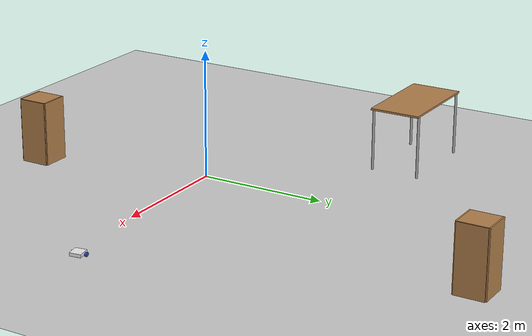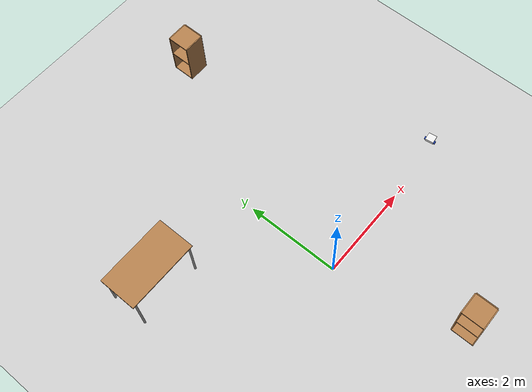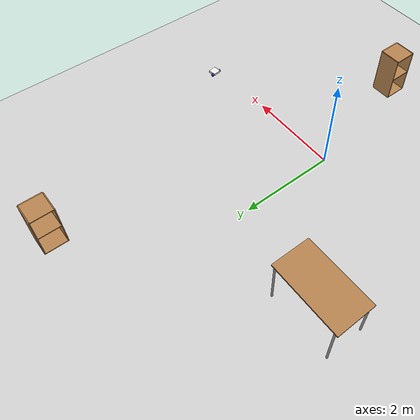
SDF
<sdf version="1.7">
 <world name="default">
  <light name="sun" type="directional">
   <pose>0 0 10 0 -0 0</pose>
   <diffuse>0.8 0.8 0.8 1</diffuse>
   <specular>0.2 0.2 0.2 1</specular>
   <attenuation>
    <range>1000</range>
    <constant>0.9</constant>
    <linear>0.01</linear>
    <quadratic>0.001</quadratic>
   </attenuation>
   <direction>-0.5 0.1 -0.9</direction>
   <spot><inner_angle>0</inner_angle><outer_angle>0</outer_angle><falloff>0</falloff></spot>
  </light>
  <model name="ground_plane">
   <static>1</static>
   <link name="link">
    <collision name="collision">
     <geometry><plane><normal>0 0 1</normal><size>100 100</size></plane></geometry>
     <surface>
      <contact><collide_bitmask>65535</collide_bitmask></contact>
      <friction><ode><mu>100</mu><mu2>50</mu2></ode></friction>
     </surface>
    </collision>
    <visual name="visual">
     <cast_shadows>0</cast_shadows>
     <geometry><plane><normal>0 0 1</normal><size>100 100</size></plane></geometry>
     <material>
      <script><uri>file://media/materials/scripts/gazebo.material</uri><name>Gazebo/Grey</name></script>
     </material>
    </visual>
   </link>
  </model>
  <gravity>0 0 -9.8</gravity>
  <magnetic_field>6e-06 2.3e-05 -4.2e-05</magnetic_field>
  <atmosphere type="adiabatic"/>
  <physics type="ode">
   <max_step_size>0.001</max_step_size>
   <real_time_factor>1</real_time_factor>
   <real_time_update_rate>1000</real_time_update_rate>
  </physics>
  <scene><ambient>0.4 0.4 0.4 1</ambient><background>0.7 0.7 0.7 1</background><shadows>1</shadows></scene>
  <audio><device>default</device></audio>
  <spherical_coordinates>
   <surface_model>EARTH_WGS84</surface_model>
   <latitude_deg>0</latitude_deg>
   <longitude_deg>0</longitude_deg>
   <elevation>0</elevation>
   <heading_deg>0</heading_deg>
  </spherical_coordinates>
  <model name="my_bot">
   <link name="base_link">
    <inertial>
     <pose>0.042727 0 0.022727 0 -0 0</pose>
     <mass>0.55</mass>
     <inertia>
      <ixx>0.00150058</ixx>
      <ixy>0</ixy>
      <ixz>3.40909e-05</ixz>
      <iyy>0.00154148</iyy>
      <iyz>0</iyz>
      <izz>0.00275891</izz>
     </inertia>
    </inertial>
    <collision name="base_link_fixed_joint_lump__chassis_collision">
     <pose>0.04 0 0.025 0 -0 0</pose>
     <geometry><box><size>0.18 0.18 0.05</size></box></geometry>
    </collision>
    <collision name="base_link_fixed_joint_lump__caster_wheel_collision_1">
     <pose>0.07 0 0 0 -0 0</pose>
     <geometry><sphere><radius>0.03</radius></sphere></geometry>
     <surface><friction><ode><mu>0.001</mu><mu2>0.001</mu2></ode></friction></surface>
    </collision>
    <visual name="base_link_fixed_joint_lump__chassis_visual">
     <pose>0.04 0 0.025 0 -0 0</pose>
     <geometry><box><size>0.18 0.18 0.05</size></box></geometry>
     <material>
      <script><name>Gazebo/White</name><uri>file://media/materials/scripts/gazebo.material</uri></script>
     </material>
    </visual>
    <visual name="base_link_fixed_joint_lump__caster_wheel_visual_1">
     <pose>0.07 0 0 0 -0 0</pose>
     <geometry><sphere><radius>0.03</radius></sphere></geometry>
     <material>
      <script><name>Gazebo/Black</name><uri>file://media/materials/scripts/gazebo.material</uri></script>
     </material>
    </visual>
   </link>
   <joint name="left_wheel_joint" type="revolute">
    <pose relative_to="base_link">0 0.105 0 -1.5708 0 0</pose>
    <parent>base_link</parent>
    <child>left_wheel</child>
    <axis>
     <xyz>0 0 1</xyz>
     <limit><lower>-1e+16</lower><upper>1e+16</upper></limit>
     <dynamics><spring_reference>0</spring_reference><spring_stiffness>0</spring_stiffness></dynamics>
    </axis>
   </joint>
   <link name="left_wheel">
    <pose relative_to="left_wheel_joint">0 0 0 0 -0 0</pose>
    <inertial>
     <mass>0.05</mass>
     <inertia>
      <ixx>1.69531e-05</ixx>
      <ixy>0</ixy>
      <ixz>0</ixz>
      <iyy>1.69531e-05</iyy>
      <iyz>0</iyz>
      <izz>2.64063e-05</izz>
     </inertia>
    </inertial>
    <collision name="left_wheel_collision">
     <geometry><cylinder><length>0.03</length><radius>0.0325</radius></cylinder></geometry>
    </collision>
    <visual name="left_wheel_visual">
     <geometry><cylinder><length>0.03</length><radius>0.0325</radius></cylinder></geometry>
     <material>
      <script><name>Gazebo/Blue</name><uri>file://media/materials/scripts/gazebo.material</uri></script>
     </material>
    </visual>
   </link>
   <joint name="right_wheel_joint" type="revolute">
    <pose relative_to="base_link">0 -0.105 0 1.5708 -0 0</pose>
    <parent>base_link</parent>
    <child>right_wheel</child>
    <axis>
     <xyz>0 0 -1</xyz>
     <limit><lower>-1e+16</lower><upper>1e+16</upper></limit>
     <dynamics><spring_reference>0</spring_reference><spring_stiffness>0</spring_stiffness></dynamics>
    </axis>
   </joint>
   <link name="right_wheel">
    <pose relative_to="right_wheel_joint">0 0 0 0 -0 0</pose>
    <inertial>
     <mass>0.05</mass>
     <inertia>
      <ixx>1.69531e-05</ixx>
      <ixy>0</ixy>
      <ixz>0</ixz>
      <iyy>1.69531e-05</iyy>
      <iyz>0</iyz>
      <izz>2.64063e-05</izz>
     </inertia>
    </inertial>
    <collision name="right_wheel_collision">
     <geometry><cylinder><length>0.03</length><radius>0.0325</radius></cylinder></geometry>
    </collision>
    <visual name="right_wheel_visual">
     <geometry><cylinder><length>0.03</length><radius>0.0325</radius></cylinder></geometry>
     <material>
      <script><name>Gazebo/Blue</name><uri>file://media/materials/scripts/gazebo.material</uri></script>
     </material>
    </visual>
   </link>
   <static>0</static>
   <plugin name="diff_drive" filename="libgazebo_ros_diff_drive.so">
    <left_joint>left_wheel_joint</left_joint>
    <right_joint>right_wheel_joint</right_joint>
    <wheel_separation>0.18</wheel_separation>
    <wheel_diameter>0.065</wheel_diameter>
    <max_wheel_torque>200</max_wheel_torque>
    <max_wheel_acceleration>10.0</max_wheel_acceleration>
    <odometry_frame>odom</odometry_frame>
    <robot_base_frame>base_link</robot_base_frame>
    <publish_odom>1</publish_odom>
    <publish_odom_tf>1</publish_odom_tf>
    <publish_wheel_tf>1</publish_wheel_tf>
   </plugin>
   <pose>3.46705 0.190202 0.032501 0 0.035733 0.137879</pose>
  </model>
  <model name="table">
   <static>1</static>
   <link name="link">
    <collision name="surface">
     <pose>0 0 1 0 -0 0</pose>
     <geometry><box><size>1.5 0.8 0.03</size></box></geometry>
     <surface><friction><ode><mu>0.6</mu><mu2>0.6</mu2></ode></friction></surface>
    </collision>
    <visual name="visual1">
     <pose>0 0 1 0 -0 0</pose>
     <geometry><box><size>1.5 0.8 0.03</size></box></geometry>
     <material>
      <script><uri>file://media/materials/scripts/gazebo.material</uri><name>Gazebo/Wood</name></script>
     </material>
    </visual>
    <collision name="front_left_leg">
     <pose>0.68 0.38 0.5 0 -0 0</pose>
     <geometry><cylinder><radius>0.02</radius><length>1</length></cylinder></geometry>
    </collision>
    <visual name="front_left_leg">
     <pose>0.68 0.38 0.5 0 -0 0</pose>
     <geometry><cylinder><radius>0.02</radius><length>1</length></cylinder></geometry>
     <material>
      <script><uri>file://media/materials/scripts/gazebo.material</uri><name>Gazebo/Grey</name></script>
     </material>
    </visual>
    <collision name="front_right_leg">
     <pose>0.68 -0.38 0.5 0 -0 0</pose>
     <geometry><cylinder><radius>0.02</radius><length>1</length></cylinder></geometry>
    </collision>
    <visual name="front_right_leg">
     <pose>0.68 -0.38 0.5 0 -0 0</pose>
     <geometry><cylinder><radius>0.02</radius><length>1</length></cylinder></geometry>
     <material>
      <script><uri>file://media/materials/scripts/gazebo.material</uri><name>Gazebo/Grey</name></script>
     </material>
    </visual>
    <collision name="back_right_leg">
     <pose>-0.68 -0.38 0.5 0 -0 0</pose>
     <geometry><cylinder><radius>0.02</radius><length>1</length></cylinder></geometry>
    </collision>
    <visual name="back_right_leg">
     <pose>-0.68 -0.38 0.5 0 -0 0</pose>
     <geometry><cylinder><radius>0.02</radius><length>1</length></cylinder></geometry>
     <material>
      <script><uri>file://media/materials/scripts/gazebo.material</uri><name>Gazebo/Grey</name></script>
     </material>
    </visual>
    <collision name="back_left_leg">
     <pose>-0.68 0.38 0.5 0 -0 0</pose>
     <geometry><cylinder><radius>0.02</radius><length>1</length></cylinder></geometry>
    </collision>
    <visual name="back_left_leg">
     <pose>-0.68 0.38 0.5 0 -0 0</pose>
     <geometry><cylinder><radius>0.02</radius><length>1</length></cylinder></geometry>
     <material>
      <script><uri>file://media/materials/scripts/gazebo.material</uri><name>Gazebo/Grey</name></script>
     </material>
    </visual>
   </link>
   <pose>-2.30961 2.41005 0 0 -0 0</pose>
  </model>
  <model name="cabinet_clone">
   <static>1</static>
   <link name="cabinet_bottom_plate">
    <inertial>
     <pose>0 0 -1 0 -0 0</pose>
     <inertia><ixx>2.05</ixx><ixy>0</ixy><ixz>0</ixz><iyy>2.05</iyy><iyz>0</iyz><izz>2.05</izz></inertia>
     <mass>25</mass>
    </inertial>
    <collision name="cabinet_bottom_plate_geom">
     <pose>0 0 0.01 0 -0 0</pose>
     <geometry><box><size>0.45 0.45 0.02</size></box></geometry>
    </collision>
    <visual name="cabinet_bottom_plate_geom_visual">
     <pose>0 0 0.01 0 -0 0</pose>
     <geometry><box><size>0.45 0.45 0.02</size></box></geometry>
     <material>
      <script><uri>file://media/materials/scripts/gazebo.material</uri><name>Gazebo/Wood</name></script>
     </material>
    </visual>
    <collision name="cabinet_bottom_plate_geom_cabinet_back_plate">
     <pose>0.235 0 0.51 0 -0 0</pose>
     <geometry><box><size>0.02 0.45 1.02</size></box></geometry>
    </collision>
    <visual name="cabinet_bottom_plate_geom_cabinet_back_plate_visual">
     <pose>0.235 0 0.51 0 -0 0</pose>
     <geometry><box><size>0.02 0.45 1.02</size></box></geometry>
     <material>
      <script><uri>file://media/materials/scripts/gazebo.material</uri><name>Gazebo/Wood</name></script>
     </material>
    </visual>
    <collision name="cabinet_bottom_plate_geom_cabinet_left_plate">
     <pose>0 0.235 0.51 0 -0 0</pose>
     <geometry><box><size>0.45 0.02 1.02</size></box></geometry>
    </collision>
    <visual name="cabinet_bottom_plate_geom_cabinet_left_plate_visual">
     <pose>0 0.235 0.51 0 -0 0</pose>
     <geometry><box><size>0.45 0.02 1.02</size></box></geometry>
     <material>
      <script><uri>file://media/materials/scripts/gazebo.material</uri><name>Gazebo/Wood</name></script>
     </material>
    </visual>
    <collision name="cabinet_bottom_plate_geom_cabinet_middle_plate">
     <pose>0 0 0.51 0 -0 0</pose>
     <geometry><box><size>0.45 0.45 0.02</size></box></geometry>
    </collision>
    <visual name="cabinet_bottom_plate_geom_cabinet_middle_plate_visual">
     <pose>0 0 0.51 0 -0 0</pose>
     <geometry><box><size>0.45 0.45 0.02</size></box></geometry>
     <material>
      <script><uri>file://media/materials/scripts/gazebo.material</uri><name>Gazebo/Wood</name></script>
     </material>
    </visual>
    <collision name="cabinet_bottom_plate_geom_cabinet_right_plate">
     <pose>0 -0.235 0.51 0 -0 0</pose>
     <geometry><box><size>0.45 0.02 1.02</size></box></geometry>
    </collision>
    <visual name="cabinet_bottom_plate_geom_cabinet_right_plate_visual">
     <pose>0 -0.235 0.51 0 -0 0</pose>
     <geometry><box><size>0.45 0.02 1.02</size></box></geometry>
     <material>
      <script><uri>file://media/materials/scripts/gazebo.material</uri><name>Gazebo/Wood</name></script>
     </material>
    </visual>
    <collision name="cabinet_bottom_plate_geom_cabinet_top_plate">
     <pose>0 0 1.01 0 -0 0</pose>
     <geometry><box><size>0.45 0.45 0.02</size></box></geometry>
    </collision>
    <visual name="cabinet_bottom_plate_geom_cabinet_top_plate_visual">
     <pose>0 0 1.01 0 -0 0</pose>
     <geometry><box><size>0.45 0.45 0.02</size></box></geometry>
     <material>
      <script><uri>file://media/materials/scripts/gazebo.material</uri><name>Gazebo/Wood</name></script>
     </material>
    </visual>
   </link>
   <pose>0.676231 -2.62513 0 0 -0 0</pose>
  </model>
  <model name="cabinet_clone_2">
   <static>1</static>
   <link name="cabinet_bottom_plate">
    <inertial>
     <pose>0 0 -1 0 -0 0</pose>
     <inertia><ixx>2.05</ixx><ixy>0</ixy><ixz>0</ixz><iyy>2.05</iyy><iyz>0</iyz><izz>2.05</izz></inertia>
     <mass>25</mass>
    </inertial>
    <collision name="cabinet_bottom_plate_geom">
     <pose>0 0 0.01 0 -0 0</pose>
     <geometry><box><size>0.45 0.45 0.02</size></box></geometry>
    </collision>
    <visual name="cabinet_bottom_plate_geom_visual">
     <pose>0 0 0.01 0 -0 0</pose>
     <geometry><box><size>0.45 0.45 0.02</size></box></geometry>
     <material>
      <script><uri>file://media/materials/scripts/gazebo.material</uri><name>Gazebo/Wood</name></script>
     </material>
    </visual>
    <collision name="cabinet_bottom_plate_geom_cabinet_back_plate">
     <pose>0.235 0 0.51 0 -0 0</pose>
     <geometry><box><size>0.02 0.45 1.02</size></box></geometry>
    </collision>
    <visual name="cabinet_bottom_plate_geom_cabinet_back_plate_visual">
     <pose>0.235 0 0.51 0 -0 0</pose>
     <geometry><box><size>0.02 0.45 1.02</size></box></geometry>
     <material>
      <script><uri>file://media/materials/scripts/gazebo.material</uri><name>Gazebo/Wood</name></script>
     </material>
    </visual>
    <collision name="cabinet_bottom_plate_geom_cabinet_left_plate">
     <pose>0 0.235 0.51 0 -0 0</pose>
     <geometry><box><size>0.45 0.02 1.02</size></box></geometry>
    </collision>
    <visual name="cabinet_bottom_plate_geom_cabinet_left_plate_visual">
     <pose>0 0.235 0.51 0 -0 0</pose>
     <geometry><box><size>0.45 0.02 1.02</size></box></geometry>
     <material>
      <script><uri>file://media/materials/scripts/gazebo.material</uri><name>Gazebo/Wood</name></script>
     </material>
    </visual>
    <collision name="cabinet_bottom_plate_geom_cabinet_middle_plate">
     <pose>0 0 0.51 0 -0 0</pose>
     <geometry><box><size>0.45 0.45 0.02</size></box></geometry>
    </collision>
    <visual name="cabinet_bottom_plate_geom_cabinet_middle_plate_visual">
     <pose>0 0 0.51 0 -0 0</pose>
     <geometry><box><size>0.45 0.45 0.02</size></box></geometry>
     <material>
      <script><uri>file://media/materials/scripts/gazebo.material</uri><name>Gazebo/Wood</name></script>
     </material>
    </visual>
    <collision name="cabinet_bottom_plate_geom_cabinet_right_plate">
     <pose>0 -0.235 0.51 0 -0 0</pose>
     <geometry><box><size>0.45 0.02 1.02</size></box></geometry>
    </collision>
    <visual name="cabinet_bottom_plate_geom_cabinet_right_plate_visual">
     <pose>0 -0.235 0.51 0 -0 0</pose>
     <geometry><box><size>0.45 0.02 1.02</size></box></geometry>
     <material>
      <script><uri>file://media/materials/scripts/gazebo.material</uri><name>Gazebo/Wood</name></script>
     </material>
    </visual>
    <collision name="cabinet_bottom_plate_geom_cabinet_top_plate">
     <pose>0 0 1.01 0 -0 0</pose>
     <geometry><box><size>0.45 0.45 0.02</size></box></geometry>
    </collision>
    <visual name="cabinet_bottom_plate_geom_cabinet_top_plate_visual">
     <pose>0 0 1.01 0 -0 0</pose>
     <geometry><box><size>0.45 0.45 0.02</size></box></geometry>
     <material>
      <script><uri>file://media/materials/scripts/gazebo.material</uri><name>Gazebo/Wood</name></script>
     </material>
    </visual>
   </link>
   <pose>1.72758 5.25429 0 0 -0 0</pose>
  </model>
 </world>
</sdf>
